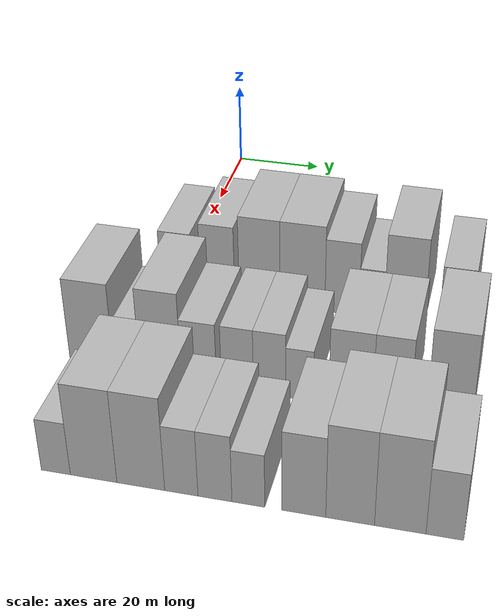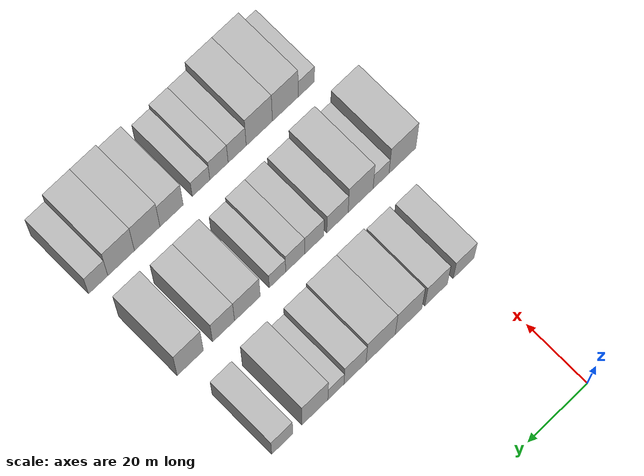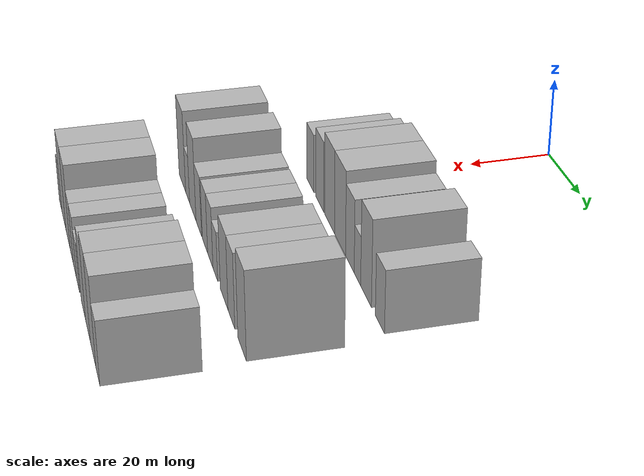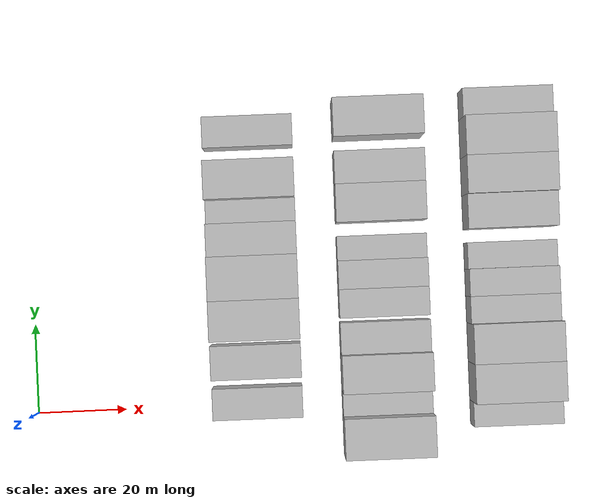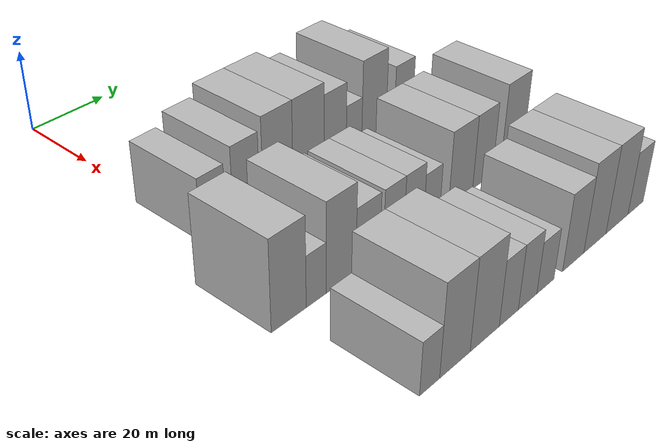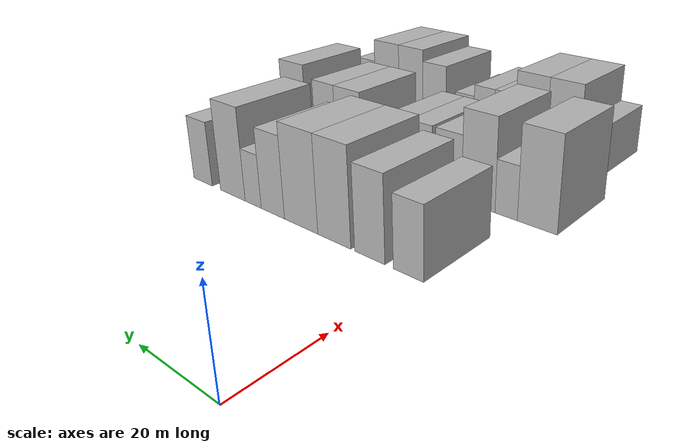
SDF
<sdf version="1.6">
 <world name="default">
  <model name="building_40">
   <static>1</static>
   <pose>50.0000 1.0177 0 0.000000 0.000000 0.000000</pose>
   <link name="link">
    <pose>0 0 7.50 0 0 0</pose>
    <collision name="collision"><geometry><box><size>20.0000 6.9742 15.0000</size></box></geometry></collision>
    <visual name="visual">
     <cast_shadows>0</cast_shadows>
     <geometry><box><size>20.0000 6.9742 15.0000</size></box></geometry>
     <material>
      <script>
       <uri>model://HANNAS_wall/materials/scripts</uri>
       <uri>model://HANNAS_wall/materials/textures</uri>
       <name>vrc/HANNAS_wall</name>
      </script>
     </material>
    </visual>
   </link>
  </model>
  <model name="building_41">
   <static>1</static>
   <pose>50.0000 10.2824 0 0.000000 0.000000 0.000000</pose>
   <link name="link">
    <pose>0 0 9.00 0 0 0</pose>
    <collision name="collision"><geometry><box><size>20.0000 7.5551 18.0000</size></box></geometry></collision>
    <visual name="visual">
     <cast_shadows>0</cast_shadows>
     <geometry><box><size>20.0000 7.5551 18.0000</size></box></geometry>
     <material>
      <script>
       <uri>model://HANNAS_wall/materials/scripts</uri>
       <uri>model://HANNAS_wall/materials/textures</uri>
       <name>vrc/HANNAS_wall</name>
      </script>
     </material>
    </visual>
   </link>
  </model>
  <model name="building_42">
   <static>1</static>
   <pose>50.0000 19.5193 0 0.000000 0.000000 0.000000</pose>
   <link name="link">
    <pose>0 0 10.50 0 0 0</pose>
    <collision name="collision"><geometry><box><size>20.0000 8.9188 21.0000</size></box></geometry></collision>
    <visual name="visual">
     <cast_shadows>0</cast_shadows>
     <geometry><box><size>20.0000 8.9188 21.0000</size></box></geometry>
     <material>
      <script>
       <uri>model://HANNAS_wall/materials/scripts</uri>
       <uri>model://HANNAS_wall/materials/textures</uri>
       <name>vrc/HANNAS_wall</name>
      </script>
     </material>
    </visual>
   </link>
  </model>
  <model name="building_43">
   <static>1</static>
   <pose>50.0000 28.8497 0 0.000000 0.000000 0.000000</pose>
   <link name="link">
    <pose>0 0 10.50 0 0 0</pose>
    <collision name="collision"><geometry><box><size>20.0000 9.7421 21.0000</size></box></geometry></collision>
    <visual name="visual">
     <cast_shadows>0</cast_shadows>
     <geometry><box><size>20.0000 9.7421 21.0000</size></box></geometry>
     <material>
      <script>
       <uri>model://HANNAS_wall/materials/scripts</uri>
       <uri>model://HANNAS_wall/materials/textures</uri>
       <name>vrc/HANNAS_wall</name>
      </script>
     </material>
    </visual>
   </link>
  </model>
  <model name="building_44">
   <static>1</static>
   <pose>50.0000 37.3700 0 0.000000 0.000000 0.000000</pose>
   <link name="link">
    <pose>0 0 9.00 0 0 0</pose>
    <collision name="collision"><geometry><box><size>20.0000 7.2984 18.0000</size></box></geometry></collision>
    <visual name="visual">
     <cast_shadows>0</cast_shadows>
     <geometry><box><size>20.0000 7.2984 18.0000</size></box></geometry>
     <material>
      <script>
       <uri>model://HANNAS_wall/materials/scripts</uri>
       <uri>model://HANNAS_wall/materials/textures</uri>
       <name>vrc/HANNAS_wall</name>
      </script>
     </material>
    </visual>
   </link>
  </model>
  <model name="building_45">
   <static>1</static>
   <pose>50.0000 43.6672 0 0.000000 0.000000 0.000000</pose>
   <link name="link">
    <pose>0 0 6.00 0 0 0</pose>
    <collision name="collision"><geometry><box><size>20.0000 5.2960 12.0000</size></box></geometry></collision>
    <visual name="visual">
     <cast_shadows>0</cast_shadows>
     <geometry><box><size>20.0000 5.2960 12.0000</size></box></geometry>
     <material>
      <script>
       <uri>model://HANNAS_wall/materials/scripts</uri>
       <uri>model://HANNAS_wall/materials/textures</uri>
       <name>vrc/HANNAS_wall</name>
      </script>
     </material>
    </visual>
   </link>
  </model>
  <model name="building_46">
   <static>1</static>
   <pose>50.0000 50.5964 0 0.000000 0.000000 0.000000</pose>
   <link name="link">
    <pose>0 0 10.50 0 0 0</pose>
    <collision name="collision"><geometry><box><size>20.0000 8.5625 21.0000</size></box></geometry></collision>
    <visual name="visual">
     <cast_shadows>0</cast_shadows>
     <geometry><box><size>20.0000 8.5625 21.0000</size></box></geometry>
     <material>
      <script>
       <uri>model://HANNAS_wall/materials/scripts</uri>
       <uri>model://HANNAS_wall/materials/textures</uri>
       <name>vrc/HANNAS_wall</name>
      </script>
     </material>
    </visual>
   </link>
  </model>
  <model name="building_47">
   <static>1</static>
   <pose>50.0000 61.3244 0 0.000000 0.000000 0.000000</pose>
   <link name="link">
    <pose>0 0 7.50 0 0 0</pose>
    <collision name="collision"><geometry><box><size>20.0000 6.8935 15.0000</size></box></geometry></collision>
    <visual name="visual">
     <cast_shadows>0</cast_shadows>
     <geometry><box><size>20.0000 6.8935 15.0000</size></box></geometry>
     <material>
      <script>
       <uri>model://HANNAS_wall/materials/scripts</uri>
       <uri>model://HANNAS_wall/materials/textures</uri>
       <name>vrc/HANNAS_wall</name>
      </script>
     </material>
    </visual>
   </link>
  </model>
  <model name="building_113">
   <static>1</static>
   <pose>79.0000 -7.4538 0 0.000000 0.000000 0.000000</pose>
   <link name="link">
    <pose>0 0 10.50 0 0 0</pose>
    <collision name="collision"><geometry><box><size>20.0000 9.0966 21.0000</size></box></geometry></collision>
    <visual name="visual">
     <cast_shadows>0</cast_shadows>
     <geometry><box><size>20.0000 9.0966 21.0000</size></box></geometry>
     <material>
      <script>
       <uri>model://HANNAS_wall/materials/scripts</uri>
       <uri>model://HANNAS_wall/materials/textures</uri>
       <name>vrc/HANNAS_wall</name>
      </script>
     </material>
    </visual>
   </link>
  </model>
  <model name="building_114">
   <static>1</static>
   <pose>79.0000 -0.2153 0 0.000000 0.000000 0.000000</pose>
   <link name="link">
    <pose>0 0 6.00 0 0 0</pose>
    <collision name="collision"><geometry><box><size>20.0000 5.3804 12.0000</size></box></geometry></collision>
    <visual name="visual">
     <cast_shadows>0</cast_shadows>
     <geometry><box><size>20.0000 5.3804 12.0000</size></box></geometry>
     <material>
      <script>
       <uri>model://HANNAS_wall/materials/scripts</uri>
       <uri>model://HANNAS_wall/materials/textures</uri>
       <name>vrc/HANNAS_wall</name>
      </script>
     </material>
    </visual>
   </link>
  </model>
  <model name="building_115">
   <static>1</static>
   <pose>79.0000 6.6951 0 0.000000 0.000000 0.000000</pose>
   <link name="link">
    <pose>0 0 10.50 0 0 0</pose>
    <collision name="collision"><geometry><box><size>20.0000 8.4403 21.0000</size></box></geometry></collision>
    <visual name="visual">
     <cast_shadows>0</cast_shadows>
     <geometry><box><size>20.0000 8.4403 21.0000</size></box></geometry>
     <material>
      <script>
       <uri>model://HANNAS_wall/materials/scripts</uri>
       <uri>model://HANNAS_wall/materials/textures</uri>
       <name>vrc/HANNAS_wall</name>
      </script>
     </material>
    </visual>
   </link>
  </model>
  <model name="building_116">
   <static>1</static>
   <pose>79.0000 14.4837 0 0.000000 0.000000 0.000000</pose>
   <link name="link">
    <pose>0 0 7.50 0 0 0</pose>
    <collision name="collision"><geometry><box><size>20.0000 7.1367 15.0000</size></box></geometry></collision>
    <visual name="visual">
     <cast_shadows>0</cast_shadows>
     <geometry><box><size>20.0000 7.1367 15.0000</size></box></geometry>
     <material>
      <script>
       <uri>model://HANNAS_wall/materials/scripts</uri>
       <uri>model://HANNAS_wall/materials/textures</uri>
       <name>vrc/HANNAS_wall</name>
      </script>
     </material>
    </visual>
   </link>
  </model>
  <model name="building_117">
   <static>1</static>
   <pose>79.0000 22.2401 0 0.000000 0.000000 0.000000</pose>
   <link name="link">
    <pose>0 0 7.50 0 0 0</pose>
    <collision name="collision"><geometry><box><size>20.0000 6.3761 15.0000</size></box></geometry></collision>
    <visual name="visual">
     <cast_shadows>0</cast_shadows>
     <geometry><box><size>20.0000 6.3761 15.0000</size></box></geometry>
     <material>
      <script>
       <uri>model://HANNAS_wall/materials/scripts</uri>
       <uri>model://HANNAS_wall/materials/textures</uri>
       <name>vrc/HANNAS_wall</name>
      </script>
     </material>
    </visual>
   </link>
  </model>
  <model name="building_118">
   <static>1</static>
   <pose>79.0000 28.6044 0 0.000000 0.000000 0.000000</pose>
   <link name="link">
    <pose>0 0 7.50 0 0 0</pose>
    <collision name="collision"><geometry><box><size>20.0000 6.3525 15.0000</size></box></geometry></collision>
    <visual name="visual">
     <cast_shadows>0</cast_shadows>
     <geometry><box><size>20.0000 6.3525 15.0000</size></box></geometry>
     <material>
      <script>
       <uri>model://HANNAS_wall/materials/scripts</uri>
       <uri>model://HANNAS_wall/materials/textures</uri>
       <name>vrc/HANNAS_wall</name>
      </script>
     </material>
    </visual>
   </link>
  </model>
  <model name="building_119">
   <static>1</static>
   <pose>79.0000 34.5072 0 0.000000 0.000000 0.000000</pose>
   <link name="link">
    <pose>0 0 6.00 0 0 0</pose>
    <collision name="collision"><geometry><box><size>20.0000 5.4531 12.0000</size></box></geometry></collision>
    <visual name="visual">
     <cast_shadows>0</cast_shadows>
     <geometry><box><size>20.0000 5.4531 12.0000</size></box></geometry>
     <material>
      <script>
       <uri>model://HANNAS_wall/materials/scripts</uri>
       <uri>model://HANNAS_wall/materials/textures</uri>
       <name>vrc/HANNAS_wall</name>
      </script>
     </material>
    </visual>
   </link>
  </model>
  <model name="building_120">
   <static>1</static>
   <pose>79.0000 44.4714 0 0.000000 0.000000 0.000000</pose>
   <link name="link">
    <pose>0 0 9.00 0 0 0</pose>
    <collision name="collision"><geometry><box><size>20.0000 8.4752 18.0000</size></box></geometry></collision>
    <visual name="visual">
     <cast_shadows>0</cast_shadows>
     <geometry><box><size>20.0000 8.4752 18.0000</size></box></geometry>
     <material>
      <script>
       <uri>model://HANNAS_wall/materials/scripts</uri>
       <uri>model://HANNAS_wall/materials/textures</uri>
       <name>vrc/HANNAS_wall</name>
      </script>
     </material>
    </visual>
   </link>
  </model>
  <model name="building_121">
   <static>1</static>
   <pose>79.0000 52.3282 0 0.000000 0.000000 0.000000</pose>
   <link name="link">
    <pose>0 0 9.00 0 0 0</pose>
    <collision name="collision"><geometry><box><size>20.0000 7.2385 18.0000</size></box></geometry></collision>
    <visual name="visual">
     <cast_shadows>0</cast_shadows>
     <geometry><box><size>20.0000 7.2385 18.0000</size></box></geometry>
     <material>
      <script>
       <uri>model://HANNAS_wall/materials/scripts</uri>
       <uri>model://HANNAS_wall/materials/textures</uri>
       <name>vrc/HANNAS_wall</name>
      </script>
     </material>
    </visual>
   </link>
  </model>
  <model name="building_122">
   <static>1</static>
   <pose>79.0000 63.2395 0 0.000000 0.000000 0.000000</pose>
   <link name="link">
    <pose>0 0 10.50 0 0 0</pose>
    <collision name="collision"><geometry><box><size>20.0000 8.5841 21.0000</size></box></geometry></collision>
    <visual name="visual">
     <cast_shadows>0</cast_shadows>
     <geometry><box><size>20.0000 8.5841 21.0000</size></box></geometry>
     <material>
      <script>
       <uri>model://HANNAS_wall/materials/scripts</uri>
       <uri>model://HANNAS_wall/materials/textures</uri>
       <name>vrc/HANNAS_wall</name>
      </script>
     </material>
    </visual>
   </link>
  </model>
  <model name="building_183">
   <static>1</static>
   <pose>108.0000 -3.5966 0 0.000000 0.000000 0.000000</pose>
   <link name="link">
    <pose>0 0 6.00 0 0 0</pose>
    <collision name="collision"><geometry><box><size>20.0000 5.4894 12.0000</size></box></geometry></collision>
    <visual name="visual">
     <cast_shadows>0</cast_shadows>
     <geometry><box><size>20.0000 5.4894 12.0000</size></box></geometry>
     <material>
      <script>
       <uri>model://HANNAS_wall/materials/scripts</uri>
       <uri>model://HANNAS_wall/materials/textures</uri>
       <name>vrc/HANNAS_wall</name>
      </script>
     </material>
    </visual>
   </link>
  </model>
  <model name="building_184">
   <static>1</static>
   <pose>108.0000 3.5065 0 0.000000 0.000000 0.000000</pose>
   <link name="link">
    <pose>0 0 10.50 0 0 0</pose>
    <collision name="collision"><geometry><box><size>20.0000 8.7169 21.0000</size></box></geometry></collision>
    <visual name="visual">
     <cast_shadows>0</cast_shadows>
     <geometry><box><size>20.0000 8.7169 21.0000</size></box></geometry>
     <material>
      <script>
       <uri>model://HANNAS_wall/materials/scripts</uri>
       <uri>model://HANNAS_wall/materials/textures</uri>
       <name>vrc/HANNAS_wall</name>
      </script>
     </material>
    </visual>
   </link>
  </model>
  <model name="building_185">
   <static>1</static>
   <pose>108.0000 12.2656 0 0.000000 0.000000 0.000000</pose>
   <link name="link">
    <pose>0 0 10.50 0 0 0</pose>
    <collision name="collision"><geometry><box><size>20.0000 8.8012 21.0000</size></box></geometry></collision>
    <visual name="visual">
     <cast_shadows>0</cast_shadows>
     <geometry><box><size>20.0000 8.8012 21.0000</size></box></geometry>
     <material>
      <script>
       <uri>model://HANNAS_wall/materials/scripts</uri>
       <uri>model://HANNAS_wall/materials/textures</uri>
       <name>vrc/HANNAS_wall</name>
      </script>
     </material>
    </visual>
   </link>
  </model>
  <model name="building_186">
   <static>1</static>
   <pose>108.0000 19.6932 0 0.000000 0.000000 0.000000</pose>
   <link name="link">
    <pose>0 0 7.50 0 0 0</pose>
    <collision name="collision"><geometry><box><size>20.0000 6.0541 15.0000</size></box></geometry></collision>
    <visual name="visual">
     <cast_shadows>0</cast_shadows>
     <geometry><box><size>20.0000 6.0541 15.0000</size></box></geometry>
     <material>
      <script>
       <uri>model://HANNAS_wall/materials/scripts</uri>
       <uri>model://HANNAS_wall/materials/textures</uri>
       <name>vrc/HANNAS_wall</name>
      </script>
     </material>
    </visual>
   </link>
  </model>
  <model name="building_187">
   <static>1</static>
   <pose>108.0000 25.7743 0 0.000000 0.000000 0.000000</pose>
   <link name="link">
    <pose>0 0 7.50 0 0 0</pose>
    <collision name="collision"><geometry><box><size>20.0000 6.1081 15.0000</size></box></geometry></collision>
    <visual name="visual">
     <cast_shadows>0</cast_shadows>
     <geometry><box><size>20.0000 6.1081 15.0000</size></box></geometry>
     <material>
      <script>
       <uri>model://HANNAS_wall/materials/scripts</uri>
       <uri>model://HANNAS_wall/materials/textures</uri>
       <name>vrc/HANNAS_wall</name>
      </script>
     </material>
    </visual>
   </link>
  </model>
  <model name="building_188">
   <static>1</static>
   <pose>108.0000 31.7592 0 0.000000 0.000000 0.000000</pose>
   <link name="link">
    <pose>0 0 6.00 0 0 0</pose>
    <collision name="collision"><geometry><box><size>20.0000 5.8617 12.0000</size></box></geometry></collision>
    <visual name="visual">
     <cast_shadows>0</cast_shadows>
     <geometry><box><size>20.0000 5.8617 12.0000</size></box></geometry>
     <material>
      <script>
       <uri>model://HANNAS_wall/materials/scripts</uri>
       <uri>model://HANNAS_wall/materials/textures</uri>
       <name>vrc/HANNAS_wall</name>
      </script>
     </material>
    </visual>
   </link>
  </model>
  <model name="building_189">
   <static>1</static>
   <pose>108.0000 41.5327 0 0.000000 0.000000 0.000000</pose>
   <link name="link">
    <pose>0 0 9.00 0 0 0</pose>
    <collision name="collision"><geometry><box><size>20.0000 7.6853 18.0000</size></box></geometry></collision>
    <visual name="visual">
     <cast_shadows>0</cast_shadows>
     <geometry><box><size>20.0000 7.6853 18.0000</size></box></geometry>
     <material>
      <script>
       <uri>model://HANNAS_wall/materials/scripts</uri>
       <uri>model://HANNAS_wall/materials/textures</uri>
       <name>vrc/HANNAS_wall</name>
      </script>
     </material>
    </visual>
   </link>
  </model>
  <model name="building_190">
   <static>1</static>
   <pose>108.0000 49.5774 0 0.000000 0.000000 0.000000</pose>
   <link name="link">
    <pose>0 0 10.50 0 0 0</pose>
    <collision name="collision"><geometry><box><size>20.0000 8.4040 21.0000</size></box></geometry></collision>
    <visual name="visual">
     <cast_shadows>0</cast_shadows>
     <geometry><box><size>20.0000 8.4040 21.0000</size></box></geometry>
     <material>
      <script>
       <uri>model://HANNAS_wall/materials/scripts</uri>
       <uri>model://HANNAS_wall/materials/textures</uri>
       <name>vrc/HANNAS_wall</name>
      </script>
     </material>
    </visual>
   </link>
  </model>
  <model name="building_191">
   <static>1</static>
   <pose>108.0000 58.1524 0 0.000000 0.000000 0.000000</pose>
   <link name="link">
    <pose>0 0 10.50 0 0 0</pose>
    <collision name="collision"><geometry><box><size>20.0000 8.7460 21.0000</size></box></geometry></collision>
    <visual name="visual">
     <cast_shadows>0</cast_shadows>
     <geometry><box><size>20.0000 8.7460 21.0000</size></box></geometry>
     <material>
      <script>
       <uri>model://HANNAS_wall/materials/scripts</uri>
       <uri>model://HANNAS_wall/materials/textures</uri>
       <name>vrc/HANNAS_wall</name>
      </script>
     </material>
    </visual>
   </link>
  </model>
  <model name="building_192">
   <static>1</static>
   <pose>108.0000 65.6863 0 0.000000 0.000000 0.000000</pose>
   <link name="link">
    <pose>0 0 7.50 0 0 0</pose>
    <collision name="collision"><geometry><box><size>20.0000 6.3219 15.0000</size></box></geometry></collision>
    <visual name="visual">
     <cast_shadows>0</cast_shadows>
     <geometry><box><size>20.0000 6.3219 15.0000</size></box></geometry>
     <material>
      <script>
       <uri>model://HANNAS_wall/materials/scripts</uri>
       <uri>model://HANNAS_wall/materials/textures</uri>
       <name>vrc/HANNAS_wall</name>
      </script>
     </material>
    </visual>
   </link>
  </model>
 </world>
</sdf>
